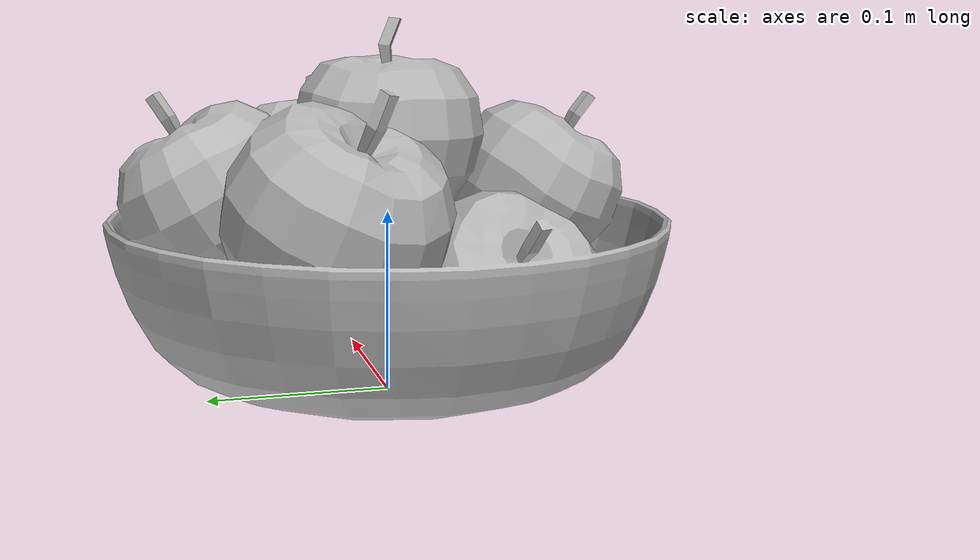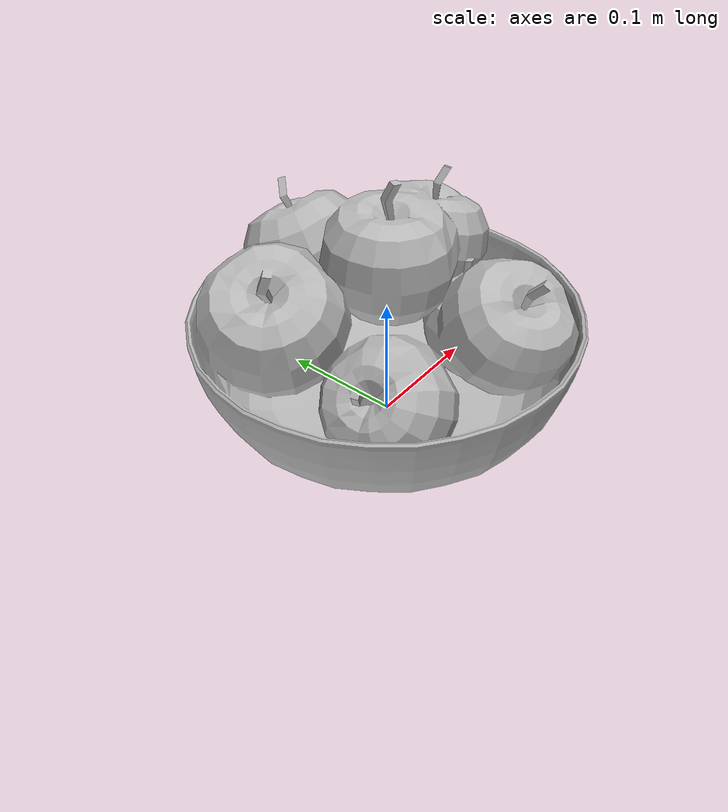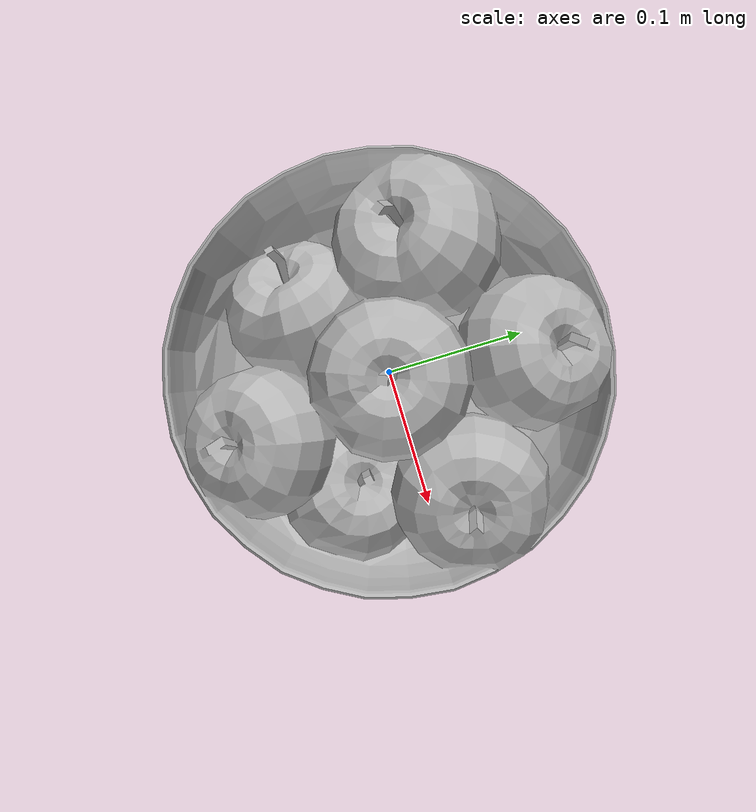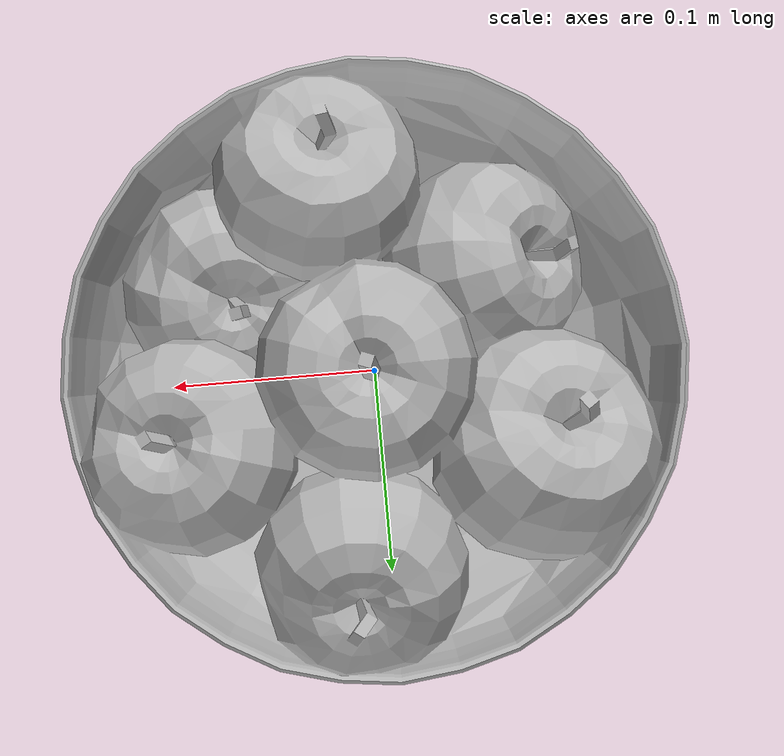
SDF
<?xml version='1.0'?>
<sdf version='1.4'>
  <model name='678'>
    <pose>0 0 0 0 0 0</pose>
    <static>true</static>
    <link name='link'>
      <collision name='collision'>
        <pose>0 0 0 0 0 0</pose>
        <geometry>
          <box>
            <size>0.299858 0.299858 2</size>
          </box>
        </geometry>
      </collision>
      <visual name='visual'>
        <pose>0 0 0 0 0 0</pose>
        <geometry>
          <mesh><uri>model://678/678.dae</uri></mesh>
        </geometry>
      </visual>
    </link>
  </model>
</sdf>
